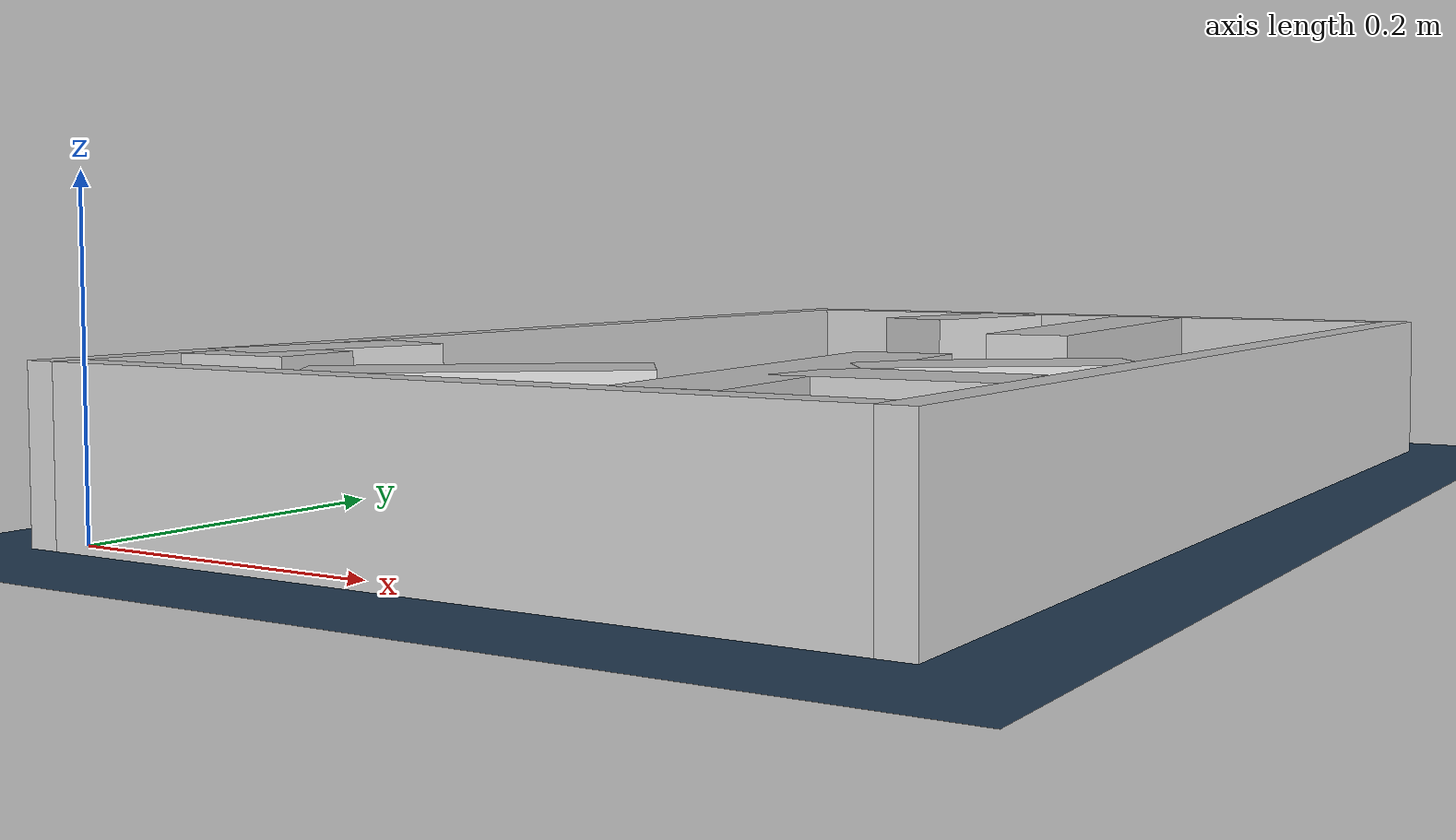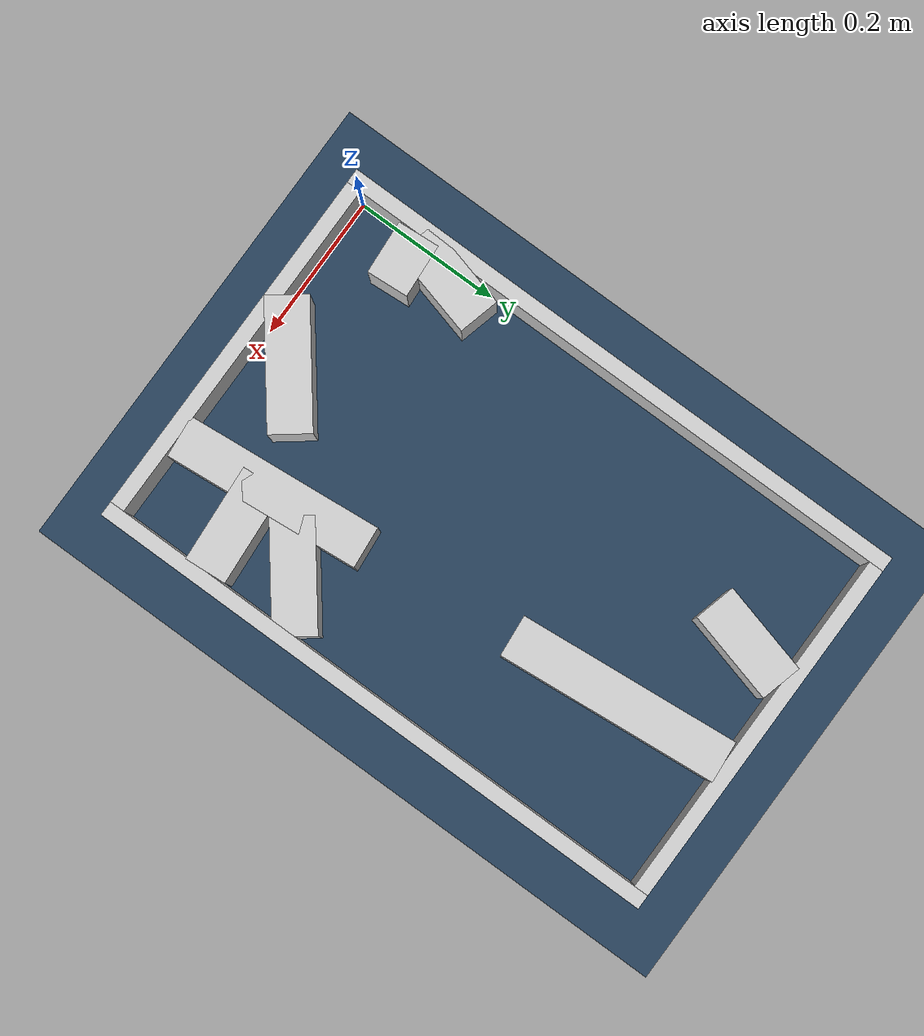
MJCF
<?xml version="1.0" ?>
<mujoco model="generated_real_template">
  <compiler angle="degree"/>
  <option timestep="0.002" integrator="implicitfast" iterations="100" cone="elliptic"/>
  <default>
    <geom density="1"/>
  </default>
  <asset>
    <texture builtin="gradient" height="3072" rgb1="0.3 0.5 0.7" rgb2="0 0 0" type="skybox" width="512"/>
    <texture builtin="checker" height="300" mark="edge" markrgb="0.8 0.8 0.8" name="groundplane" rgb1="0.2 0.3 0.4" rgb2="0.1 0.2 0.3" type="2d" width="300"/>
    <material name="groundplane" reflectance="0.2" texrepeat="5 5" texture="groundplane" texuniform="true"/>
  </asset>
  <worldbody>
    <light dir="0 0 -1" directional="true" pos="0 0 1.5"/>
    <geom name="floor" type="plane" condim="4" friction="0.5 0.005 0.001" material="groundplane" size="0 0 0.05"/>
    <body name="walls">
      <geom name="wall_boundary_left" type="box" condim="4" friction="1.0 0.005 0.0001" rgba="0.8 0.8 0.8 1" pos="-0.010000 0.387500 0.050000" euler="0 0 0.000000" size="0.010000 0.407500 0.050000"/>
      <geom name="wall_boundary_right" type="box" condim="4" friction="1.0 0.005 0.0001" rgba="0.8 0.8 0.8 1" pos="0.500000 0.387500 0.050000" euler="0 0 0.000000" size="0.010000 0.407500 0.050000"/>
      <geom name="wall_boundary_bottom" type="box" condim="4" friction="1.0 0.005 0.0001" rgba="0.8 0.8 0.8 1" pos="0.245000 -0.010000 0.050000" euler="0 0 0.000000" size="0.245000 0.010000 0.050000"/>
      <geom name="wall_boundary_top" type="box" condim="4" friction="1.0 0.005 0.0001" rgba="0.8 0.8 0.8 1" pos="0.245000 0.785000 0.050000" euler="0 0 0.000000" size="0.245000 0.010000 0.050000"/>
      <geom name="wall_inner_1_1" type="box" condim="4" friction="1.0 0.005 0.0001" rgba="0.8 0.8 0.8 1" pos="0.423685 0.119534 0.050000" euler="0 0 -175.948027" size="0.066482 0.028500 0.050000"/>
      <geom name="wall_inner_1_2" type="box" condim="4" friction="1.0 0.005 0.0001" rgba="0.8 0.8 0.8 1" pos="0.036516 0.092107 0.050000" euler="0 0 -175.948027" size="0.036607 0.028500 0.050000"/>
      <geom name="wall_inner_2_1" type="box" condim="4" friction="1.0 0.005 0.0001" rgba="0.8 0.8 0.8 1" pos="0.317623 0.624814 0.050000" euler="0 0 -84.734569" size="0.150822 0.028500 0.050000"/>
      <geom name="wall_inner_2_2" type="box" condim="4" friction="1.0 0.005 0.0001" rgba="0.8 0.8 0.8 1" pos="0.362930 0.133192 0.050000" euler="0 0 -84.734569" size="0.133757 0.028500 0.050000"/>
      <geom name="wall_inner_3_1" type="box" condim="4" friction="1.0 0.005 0.0001" rgba="0.8 0.8 0.8 1" pos="0.224843 0.055419 0.050000" euler="0 0 37.763577" size="0.086360 0.028500 0.050000"/>
      <geom name="wall_inner_3_2" type="box" condim="4" friction="1.0 0.005 0.0001" rgba="0.8 0.8 0.8 1" pos="0.431131 0.215223 0.050000" euler="0 0 37.763577" size="0.074466 0.028500 0.050000"/>
      <geom name="wall_inner_4_1" type="box" condim="4" friction="1.0 0.005 0.0001" rgba="0.8 0.8 0.8 1" pos="0.023101 0.150043 0.050000" euler="0 0 75.508998" size="0.061970 0.028500 0.050000"/>
      <geom name="wall_inner_4_2" type="box" condim="4" friction="1.0 0.005 0.0001" rgba="0.8 0.8 0.8 1" pos="0.168604 0.713027 0.050000" euler="0 0 75.508998" size="0.064010 0.028500 0.050000"/>
    </body>
  </worldbody>
</mujoco>
